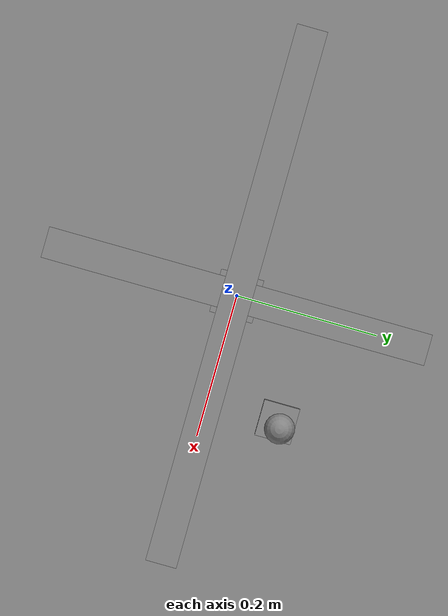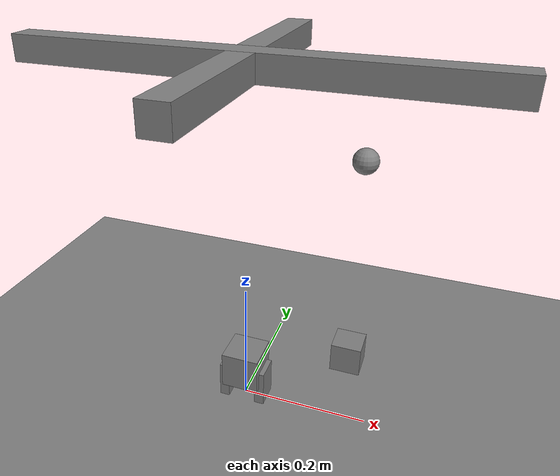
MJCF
<mujoco model="dev-b">
  <option timestep="0.002" gravity="0 0 -9.81"/>

  <worldbody>
    <geom name="floor" type="plane" size="1 1 0.05"/>
    <site name="shelf_target" pos="0.15 0.1 0.4" size="0.02"/>

    <body name="rail_x" pos="0 0 0.55">
      <geom type="box" size="0.35 0.02 0.02" mass="3.0"/>
      <joint name="x_slide" type="slide" axis="1 0 0" range="-0.25 0.25"/>

      <body name="rail_y" pos="0 0 0">
        <geom type="box" size="0.02 0.25 0.02" mass="1.5"/>
        <joint name="y_slide" type="slide" axis="0 1 0" range="-0.2 0.2"/>

        <body name="carriage" pos="0 0 -0.49">
          <geom type="box" size="0.03 0.03 0.03" mass="1.0"/>
          <joint name="z_slide" type="slide" axis="0 0 1" range="0 0.45"/>

          <body name="anvil" pos="0.03 0 -0.03">
            <geom name="anvil_pad" type="box" size="0.008 0.02 0.03" mass="0.05"/>
          </body>

          <body name="jaw" pos="-0.03 0 -0.03">
            <geom name="jaw_pad" type="box" size="0.008 0.02 0.03" mass="0.05"/>
            <joint name="jaw_slide" type="slide" axis="1 0 0" range="0 0.05"/>
            <site name="grip_center" pos="0.03 0 0" size="0.01"/>
          </body>
        </body>
      </body>
    </body>

    <body name="payload" pos="0.15 0.1 0.05">
      <freejoint name="j_payload_free"/>
      <geom name="payload_box" type="box" size="0.025 0.025 0.025" mass="0.4"/>
      <site name="payload_center" size="0.01"/>
    </body>
  </worldbody>

  <actuator>
    <position name="a_x" joint="x_slide" kp="200" ctrlrange="-0.25 0.25"/>
    <position name="a_y" joint="y_slide" kp="200" ctrlrange="-0.2 0.2"/>
    <position name="a_z" joint="z_slide" kp="300" ctrlrange="0 0.45"/>
    <position name="a_jaw" joint="jaw_slide" kp="100" ctrlrange="0 0.05"/>
  </actuator>

  <sensor>
    <touch name="s_touch_jaw" site="grip_center"/>
    <framepos name="s_payload_pos" objtype="site" objname="payload_center"/>
    <framepos name="s_target_pos" objtype="site" objname="shelf_target"/>
  </sensor>
</mujoco>
